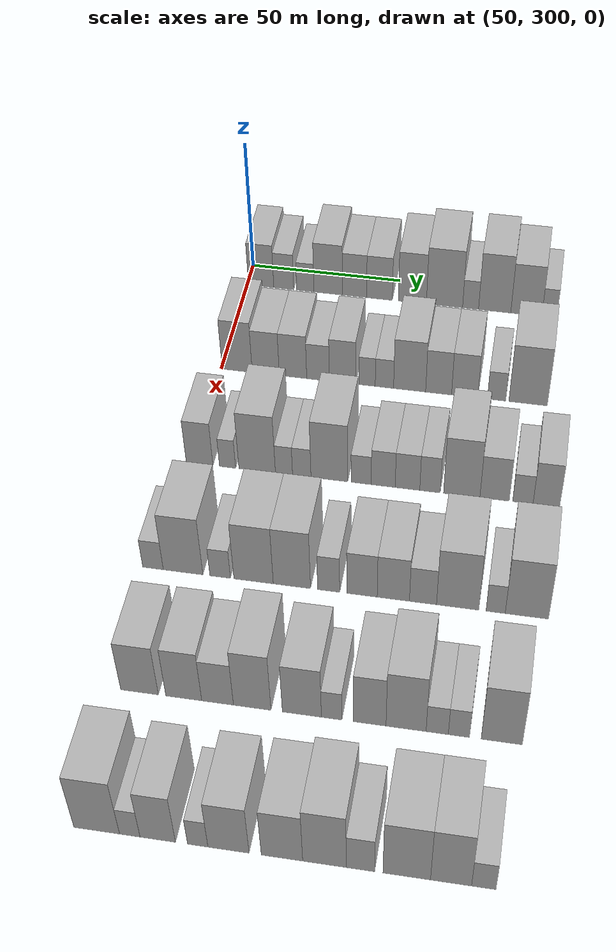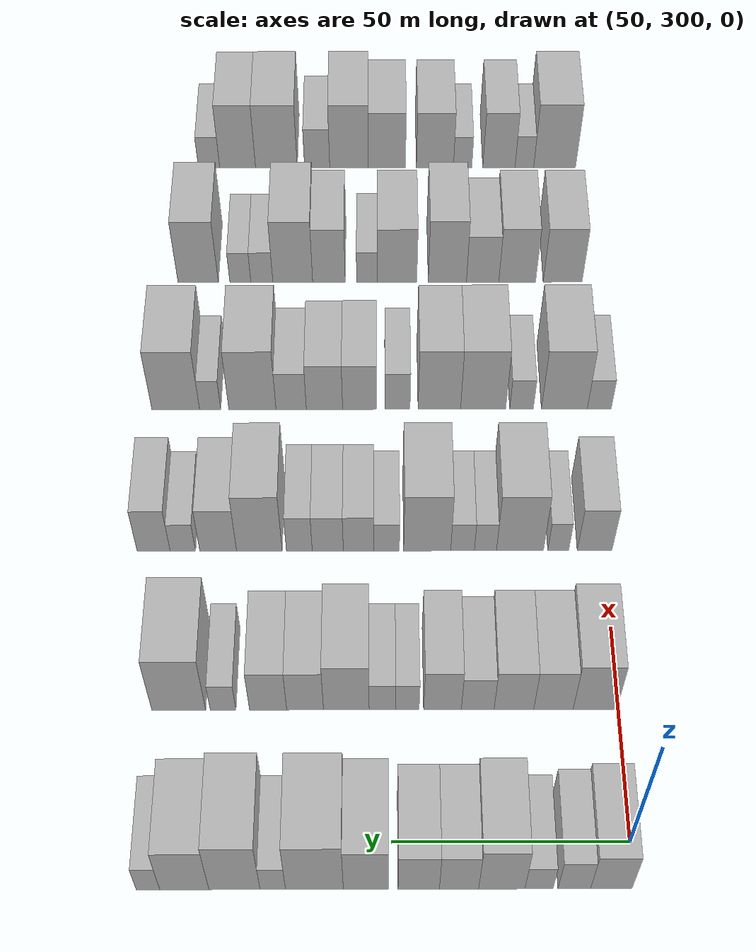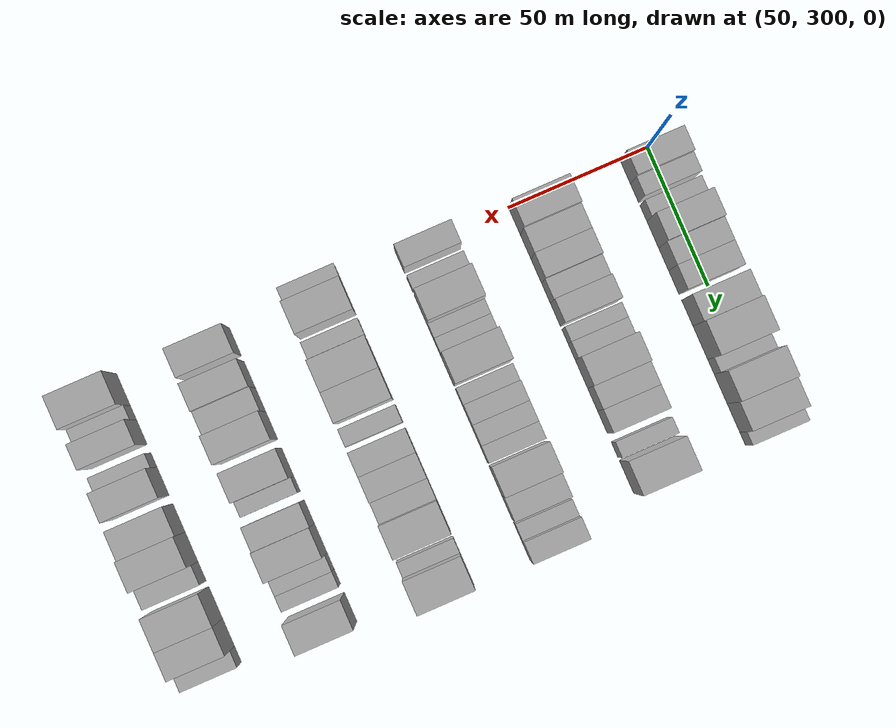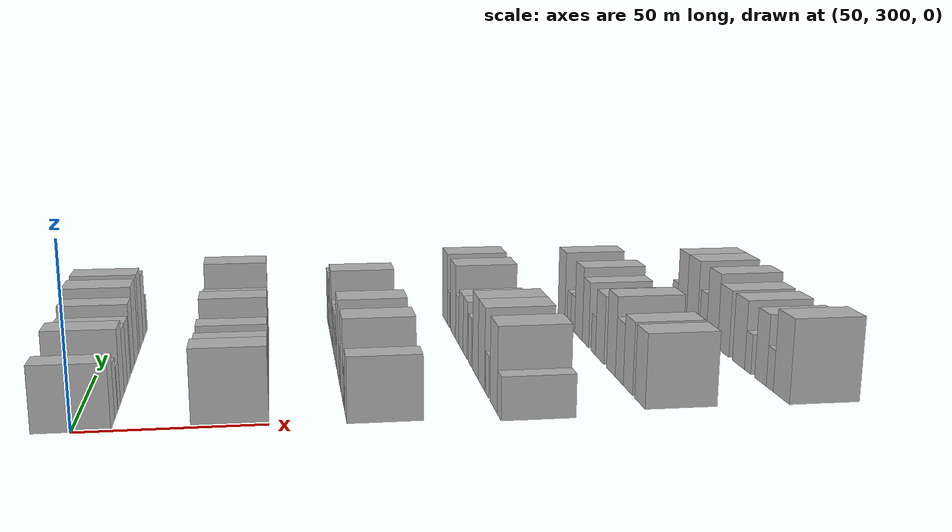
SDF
<sdf version="1.6">
 <world name="default">
  <model name="building_106">
   <static>1</static>
   <pose>50.0000 304.7006 0 0.000000 0.000000 0.000000</pose>
   <link name="link">
    <pose>0 0 9.00 0 0 0</pose>
    <collision name="collision"><geometry><box><size>20.0000 8.5782 18.0000</size></box></geometry></collision>
    <visual name="visual">
     <cast_shadows>0</cast_shadows>
     <geometry><box><size>20.0000 8.5782 18.0000</size></box></geometry>
     <material>
      <script>
       <uri>model://HANNAS_wall/materials/scripts</uri>
       <uri>model://HANNAS_wall/materials/textures</uri>
       <name>vrc/HANNAS_wall</name>
      </script>
     </material>
    </visual>
   </link>
  </model>
  <model name="building_107">
   <static>1</static>
   <pose>50.0000 312.3532 0 0.000000 0.000000 0.000000</pose>
   <link name="link">
    <pose>0 0 7.50 0 0 0</pose>
    <collision name="collision"><geometry><box><size>20.0000 6.7271 15.0000</size></box></geometry></collision>
    <visual name="visual">
     <cast_shadows>0</cast_shadows>
     <geometry><box><size>20.0000 6.7271 15.0000</size></box></geometry>
     <material>
      <script>
       <uri>model://HANNAS_wall/materials/scripts</uri>
       <uri>model://HANNAS_wall/materials/textures</uri>
       <name>vrc/HANNAS_wall</name>
      </script>
     </material>
    </visual>
   </link>
  </model>
  <model name="building_108">
   <static>1</static>
   <pose>50.0000 319.6261 0 0.000000 0.000000 0.000000</pose>
   <link name="link">
    <pose>0 0 6.00 0 0 0</pose>
    <collision name="collision"><geometry><box><size>20.0000 5.8185 12.0000</size></box></geometry></collision>
    <visual name="visual">
     <cast_shadows>0</cast_shadows>
     <geometry><box><size>20.0000 5.8185 12.0000</size></box></geometry>
     <material>
      <script>
       <uri>model://HANNAS_wall/materials/scripts</uri>
       <uri>model://HANNAS_wall/materials/textures</uri>
       <name>vrc/HANNAS_wall</name>
      </script>
     </material>
    </visual>
   </link>
  </model>
  <model name="building_109">
   <static>1</static>
   <pose>50.0000 327.3268 0 0.000000 0.000000 0.000000</pose>
   <link name="link">
    <pose>0 0 10.50 0 0 0</pose>
    <collision name="collision"><geometry><box><size>20.0000 9.5830 21.0000</size></box></geometry></collision>
    <visual name="visual">
     <cast_shadows>0</cast_shadows>
     <geometry><box><size>20.0000 9.5830 21.0000</size></box></geometry>
     <material>
      <script>
       <uri>model://HANNAS_wall/materials/scripts</uri>
       <uri>model://HANNAS_wall/materials/textures</uri>
       <name>vrc/HANNAS_wall</name>
      </script>
     </material>
    </visual>
   </link>
  </model>
  <model name="building_110">
   <static>1</static>
   <pose>50.0000 336.1752 0 0.000000 0.000000 0.000000</pose>
   <link name="link">
    <pose>0 0 9.00 0 0 0</pose>
    <collision name="collision"><geometry><box><size>20.0000 8.1138 18.0000</size></box></geometry></collision>
    <visual name="visual">
     <cast_shadows>0</cast_shadows>
     <geometry><box><size>20.0000 8.1138 18.0000</size></box></geometry>
     <material>
      <script>
       <uri>model://HANNAS_wall/materials/scripts</uri>
       <uri>model://HANNAS_wall/materials/textures</uri>
       <name>vrc/HANNAS_wall</name>
      </script>
     </material>
    </visual>
   </link>
  </model>
  <model name="building_111">
   <static>1</static>
   <pose>50.0000 344.4980 0 0.000000 0.000000 0.000000</pose>
   <link name="link">
    <pose>0 0 9.00 0 0 0</pose>
    <collision name="collision"><geometry><box><size>20.0000 8.5318 18.0000</size></box></geometry></collision>
    <visual name="visual">
     <cast_shadows>0</cast_shadows>
     <geometry><box><size>20.0000 8.5318 18.0000</size></box></geometry>
     <material>
      <script>
       <uri>model://HANNAS_wall/materials/scripts</uri>
       <uri>model://HANNAS_wall/materials/textures</uri>
       <name>vrc/HANNAS_wall</name>
      </script>
     </material>
    </visual>
   </link>
  </model>
  <model name="building_112">
   <static>1</static>
   <pose>50.0000 355.4156 0 0.000000 0.000000 0.000000</pose>
   <link name="link">
    <pose>0 0 10.50 0 0 0</pose>
    <collision name="collision"><geometry><box><size>20.0000 9.3034 21.0000</size></box></geometry></collision>
    <visual name="visual">
     <cast_shadows>0</cast_shadows>
     <geometry><box><size>20.0000 9.3034 21.0000</size></box></geometry>
     <material>
      <script>
       <uri>model://HANNAS_wall/materials/scripts</uri>
       <uri>model://HANNAS_wall/materials/textures</uri>
       <name>vrc/HANNAS_wall</name>
      </script>
     </material>
    </visual>
   </link>
  </model>
  <model name="building_113">
   <static>1</static>
   <pose>50.0000 366.0400 0 0.000000 0.000000 0.000000</pose>
   <link name="link">
    <pose>0 0 12.00 0 0 0</pose>
    <collision name="collision"><geometry><box><size>20.0000 11.9453 24.0000</size></box></geometry></collision>
    <visual name="visual">
     <cast_shadows>0</cast_shadows>
     <geometry><box><size>20.0000 11.9453 24.0000</size></box></geometry>
     <material>
      <script>
       <uri>model://HANNAS_wall/materials/scripts</uri>
       <uri>model://HANNAS_wall/materials/textures</uri>
       <name>vrc/HANNAS_wall</name>
      </script>
     </material>
    </visual>
   </link>
  </model>
  <model name="building_114">
   <static>1</static>
   <pose>50.0000 374.6412 0 0.000000 0.000000 0.000000</pose>
   <link name="link">
    <pose>0 0 6.00 0 0 0</pose>
    <collision name="collision"><geometry><box><size>20.0000 5.2570 12.0000</size></box></geometry></collision>
    <visual name="visual">
     <cast_shadows>0</cast_shadows>
     <geometry><box><size>20.0000 5.2570 12.0000</size></box></geometry>
     <material>
      <script>
       <uri>model://HANNAS_wall/materials/scripts</uri>
       <uri>model://HANNAS_wall/materials/textures</uri>
       <name>vrc/HANNAS_wall</name>
      </script>
     </material>
    </visual>
   </link>
  </model>
  <model name="building_115">
   <static>1</static>
   <pose>50.0000 382.5492 0 0.000000 0.000000 0.000000</pose>
   <link name="link">
    <pose>0 0 12.00 0 0 0</pose>
    <collision name="collision"><geometry><box><size>20.0000 10.5591 24.0000</size></box></geometry></collision>
    <visual name="visual">
     <cast_shadows>0</cast_shadows>
     <geometry><box><size>20.0000 10.5591 24.0000</size></box></geometry>
     <material>
      <script>
       <uri>model://HANNAS_wall/materials/scripts</uri>
       <uri>model://HANNAS_wall/materials/textures</uri>
       <name>vrc/HANNAS_wall</name>
      </script>
     </material>
    </visual>
   </link>
  </model>
  <model name="building_116">
   <static>1</static>
   <pose>50.0000 392.9078 0 0.000000 0.000000 0.000000</pose>
   <link name="link">
    <pose>0 0 10.50 0 0 0</pose>
    <collision name="collision"><geometry><box><size>20.0000 10.1581 21.0000</size></box></geometry></collision>
    <visual name="visual">
     <cast_shadows>0</cast_shadows>
     <geometry><box><size>20.0000 10.1581 21.0000</size></box></geometry>
     <material>
      <script>
       <uri>model://HANNAS_wall/materials/scripts</uri>
       <uri>model://HANNAS_wall/materials/textures</uri>
       <name>vrc/HANNAS_wall</name>
      </script>
     </material>
    </visual>
   </link>
  </model>
  <model name="building_117">
   <static>1</static>
   <pose>50.0000 400.4107 0 0.000000 0.000000 0.000000</pose>
   <link name="link">
    <pose>0 0 6.00 0 0 0</pose>
    <collision name="collision"><geometry><box><size>20.0000 4.8476 12.0000</size></box></geometry></collision>
    <visual name="visual">
     <cast_shadows>0</cast_shadows>
     <geometry><box><size>20.0000 4.8476 12.0000</size></box></geometry>
     <material>
      <script>
       <uri>model://HANNAS_wall/materials/scripts</uri>
       <uri>model://HANNAS_wall/materials/textures</uri>
       <name>vrc/HANNAS_wall</name>
      </script>
     </material>
    </visual>
   </link>
  </model>
  <model name="building_242">
   <static>1</static>
   <pose>90.0000 305.0997 0 0.000000 0.000000 0.000000</pose>
   <link name="link">
    <pose>0 0 10.50 0 0 0</pose>
    <collision name="collision"><geometry><box><size>20.0000 9.6216 21.0000</size></box></geometry></collision>
    <visual name="visual">
     <cast_shadows>0</cast_shadows>
     <geometry><box><size>20.0000 9.6216 21.0000</size></box></geometry>
     <material>
      <script>
       <uri>model://HANNAS_wall/materials/scripts</uri>
       <uri>model://HANNAS_wall/materials/textures</uri>
       <name>vrc/HANNAS_wall</name>
      </script>
     </material>
    </visual>
   </link>
  </model>
  <model name="building_243">
   <static>1</static>
   <pose>90.0000 314.2481 0 0.000000 0.000000 0.000000</pose>
   <link name="link">
    <pose>0 0 9.00 0 0 0</pose>
    <collision name="collision"><geometry><box><size>20.0000 8.6752 18.0000</size></box></geometry></collision>
    <visual name="visual">
     <cast_shadows>0</cast_shadows>
     <geometry><box><size>20.0000 8.6752 18.0000</size></box></geometry>
     <material>
      <script>
       <uri>model://HANNAS_wall/materials/scripts</uri>
       <uri>model://HANNAS_wall/materials/textures</uri>
       <name>vrc/HANNAS_wall</name>
      </script>
     </material>
    </visual>
   </link>
  </model>
  <model name="building_244">
   <static>1</static>
   <pose>90.0000 322.9524 0 0.000000 0.000000 0.000000</pose>
   <link name="link">
    <pose>0 0 9.00 0 0 0</pose>
    <collision name="collision"><geometry><box><size>20.0000 8.7335 18.0000</size></box></geometry></collision>
    <visual name="visual">
     <cast_shadows>0</cast_shadows>
     <geometry><box><size>20.0000 8.7335 18.0000</size></box></geometry>
     <material>
      <script>
       <uri>model://HANNAS_wall/materials/scripts</uri>
       <uri>model://HANNAS_wall/materials/textures</uri>
       <name>vrc/HANNAS_wall</name>
      </script>
     </material>
    </visual>
   </link>
  </model>
  <model name="building_245">
   <static>1</static>
   <pose>90.0000 330.9214 0 0.000000 0.000000 0.000000</pose>
   <link name="link">
    <pose>0 0 7.50 0 0 0</pose>
    <collision name="collision"><geometry><box><size>20.0000 7.2046 15.0000</size></box></geometry></collision>
    <visual name="visual">
     <cast_shadows>0</cast_shadows>
     <geometry><box><size>20.0000 7.2046 15.0000</size></box></geometry>
     <material>
      <script>
       <uri>model://HANNAS_wall/materials/scripts</uri>
       <uri>model://HANNAS_wall/materials/textures</uri>
       <name>vrc/HANNAS_wall</name>
      </script>
     </material>
    </visual>
   </link>
  </model>
  <model name="building_246">
   <static>1</static>
   <pose>90.0000 338.6677 0 0.000000 0.000000 0.000000</pose>
   <link name="link">
    <pose>0 0 9.00 0 0 0</pose>
    <collision name="collision"><geometry><box><size>20.0000 8.2879 18.0000</size></box></geometry></collision>
    <visual name="visual">
     <cast_shadows>0</cast_shadows>
     <geometry><box><size>20.0000 8.2879 18.0000</size></box></geometry>
     <material>
      <script>
       <uri>model://HANNAS_wall/materials/scripts</uri>
       <uri>model://HANNAS_wall/materials/textures</uri>
       <name>vrc/HANNAS_wall</name>
      </script>
     </material>
    </visual>
   </link>
  </model>
  <model name="building_247">
   <static>1</static>
   <pose>90.0000 346.4152 0 0.000000 0.000000 0.000000</pose>
   <link name="link">
    <pose>0 0 6.00 0 0 0</pose>
    <collision name="collision"><geometry><box><size>20.0000 5.2072 12.0000</size></box></geometry></collision>
    <visual name="visual">
     <cast_shadows>0</cast_shadows>
     <geometry><box><size>20.0000 5.2072 12.0000</size></box></geometry>
     <material>
      <script>
       <uri>model://HANNAS_wall/materials/scripts</uri>
       <uri>model://HANNAS_wall/materials/textures</uri>
       <name>vrc/HANNAS_wall</name>
      </script>
     </material>
    </visual>
   </link>
  </model>
  <model name="building_248">
   <static>1</static>
   <pose>90.0000 351.9083 0 0.000000 0.000000 0.000000</pose>
   <link name="link">
    <pose>0 0 6.00 0 0 0</pose>
    <collision name="collision"><geometry><box><size>20.0000 5.7789 12.0000</size></box></geometry></collision>
    <visual name="visual">
     <cast_shadows>0</cast_shadows>
     <geometry><box><size>20.0000 5.7789 12.0000</size></box></geometry>
     <material>
      <script>
       <uri>model://HANNAS_wall/materials/scripts</uri>
       <uri>model://HANNAS_wall/materials/textures</uri>
       <name>vrc/HANNAS_wall</name>
      </script>
     </material>
    </visual>
   </link>
  </model>
  <model name="building_249">
   <static>1</static>
   <pose>90.0000 359.8193 0 0.000000 0.000000 0.000000</pose>
   <link name="link">
    <pose>0 0 10.50 0 0 0</pose>
    <collision name="collision"><geometry><box><size>20.0000 10.0432 21.0000</size></box></geometry></collision>
    <visual name="visual">
     <cast_shadows>0</cast_shadows>
     <geometry><box><size>20.0000 10.0432 21.0000</size></box></geometry>
     <material>
      <script>
       <uri>model://HANNAS_wall/materials/scripts</uri>
       <uri>model://HANNAS_wall/materials/textures</uri>
       <name>vrc/HANNAS_wall</name>
      </script>
     </material>
    </visual>
   </link>
  </model>
  <model name="building_250">
   <static>1</static>
   <pose>90.0000 368.8852 0 0.000000 0.000000 0.000000</pose>
   <link name="link">
    <pose>0 0 9.00 0 0 0</pose>
    <collision name="collision"><geometry><box><size>20.0000 8.0887 18.0000</size></box></geometry></collision>
    <visual name="visual">
     <cast_shadows>0</cast_shadows>
     <geometry><box><size>20.0000 8.0887 18.0000</size></box></geometry>
     <material>
      <script>
       <uri>model://HANNAS_wall/materials/scripts</uri>
       <uri>model://HANNAS_wall/materials/textures</uri>
       <name>vrc/HANNAS_wall</name>
      </script>
     </material>
    </visual>
   </link>
  </model>
  <model name="building_251">
   <static>1</static>
   <pose>90.0000 377.0116 0 0.000000 0.000000 0.000000</pose>
   <link name="link">
    <pose>0 0 9.00 0 0 0</pose>
    <collision name="collision"><geometry><box><size>20.0000 8.1642 18.0000</size></box></geometry></collision>
    <visual name="visual">
     <cast_shadows>0</cast_shadows>
     <geometry><box><size>20.0000 8.1642 18.0000</size></box></geometry>
     <material>
      <script>
       <uri>model://HANNAS_wall/materials/scripts</uri>
       <uri>model://HANNAS_wall/materials/textures</uri>
       <name>vrc/HANNAS_wall</name>
      </script>
     </material>
    </visual>
   </link>
  </model>
  <model name="building_252">
   <static>1</static>
   <pose>90.0000 386.9172 0 0.000000 0.000000 0.000000</pose>
   <link name="link">
    <pose>0 0 6.00 0 0 0</pose>
    <collision name="collision"><geometry><box><size>20.0000 5.6470 12.0000</size></box></geometry></collision>
    <visual name="visual">
     <cast_shadows>0</cast_shadows>
     <geometry><box><size>20.0000 5.6470 12.0000</size></box></geometry>
     <material>
      <script>
       <uri>model://HANNAS_wall/materials/scripts</uri>
       <uri>model://HANNAS_wall/materials/textures</uri>
       <name>vrc/HANNAS_wall</name>
      </script>
     </material>
    </visual>
   </link>
  </model>
  <model name="building_253">
   <static>1</static>
   <pose>90.0000 396.6642 0 0.000000 0.000000 0.000000</pose>
   <link name="link">
    <pose>0 0 12.00 0 0 0</pose>
    <collision name="collision"><geometry><box><size>20.0000 11.8470 24.0000</size></box></geometry></collision>
    <visual name="visual">
     <cast_shadows>0</cast_shadows>
     <geometry><box><size>20.0000 11.8470 24.0000</size></box></geometry>
     <material>
      <script>
       <uri>model://HANNAS_wall/materials/scripts</uri>
       <uri>model://HANNAS_wall/materials/textures</uri>
       <name>vrc/HANNAS_wall</name>
      </script>
     </material>
    </visual>
   </link>
  </model>
  <model name="building_369">
   <static>1</static>
   <pose>130.0000 302.2152 0 0.000000 0.000000 0.000000</pose>
   <link name="link">
    <pose>0 0 9.00 0 0 0</pose>
    <collision name="collision"><geometry><box><size>20.0000 8.1075 18.0000</size></box></geometry></collision>
    <visual name="visual">
     <cast_shadows>0</cast_shadows>
     <geometry><box><size>20.0000 8.1075 18.0000</size></box></geometry>
     <material>
      <script>
       <uri>model://HANNAS_wall/materials/scripts</uri>
       <uri>model://HANNAS_wall/materials/textures</uri>
       <name>vrc/HANNAS_wall</name>
      </script>
     </material>
    </visual>
   </link>
  </model>
  <model name="building_370">
   <static>1</static>
   <pose>130.0000 310.7141 0 0.000000 0.000000 0.000000</pose>
   <link name="link">
    <pose>0 0 6.00 0 0 0</pose>
    <collision name="collision"><geometry><box><size>20.0000 4.8903 12.0000</size></box></geometry></collision>
    <visual name="visual">
     <cast_shadows>0</cast_shadows>
     <geometry><box><size>20.0000 4.8903 12.0000</size></box></geometry>
     <material>
      <script>
       <uri>model://HANNAS_wall/materials/scripts</uri>
       <uri>model://HANNAS_wall/materials/textures</uri>
       <name>vrc/HANNAS_wall</name>
      </script>
     </material>
    </visual>
   </link>
  </model>
  <model name="building_371">
   <static>1</static>
   <pose>130.0000 319.6565 0 0.000000 0.000000 0.000000</pose>
   <link name="link">
    <pose>0 0 12.00 0 0 0</pose>
    <collision name="collision"><geometry><box><size>20.0000 10.9944 24.0000</size></box></geometry></collision>
    <visual name="visual">
     <cast_shadows>0</cast_shadows>
     <geometry><box><size>20.0000 10.9944 24.0000</size></box></geometry>
     <material>
      <script>
       <uri>model://HANNAS_wall/materials/scripts</uri>
       <uri>model://HANNAS_wall/materials/textures</uri>
       <name>vrc/HANNAS_wall</name>
      </script>
     </material>
    </visual>
   </link>
  </model>
  <model name="building_372">
   <static>1</static>
   <pose>130.0000 327.7267 0 0.000000 0.000000 0.000000</pose>
   <link name="link">
    <pose>0 0 6.00 0 0 0</pose>
    <collision name="collision"><geometry><box><size>20.0000 5.1460 12.0000</size></box></geometry></collision>
    <visual name="visual">
     <cast_shadows>0</cast_shadows>
     <geometry><box><size>20.0000 5.1460 12.0000</size></box></geometry>
     <material>
      <script>
       <uri>model://HANNAS_wall/materials/scripts</uri>
       <uri>model://HANNAS_wall/materials/textures</uri>
       <name>vrc/HANNAS_wall</name>
      </script>
     </material>
    </visual>
   </link>
  </model>
  <model name="building_373">
   <static>1</static>
   <pose>130.0000 333.0672 0 0.000000 0.000000 0.000000</pose>
   <link name="link">
    <pose>0 0 6.00 0 0 0</pose>
    <collision name="collision"><geometry><box><size>20.0000 5.5350 12.0000</size></box></geometry></collision>
    <visual name="visual">
     <cast_shadows>0</cast_shadows>
     <geometry><box><size>20.0000 5.5350 12.0000</size></box></geometry>
     <material>
      <script>
       <uri>model://HANNAS_wall/materials/scripts</uri>
       <uri>model://HANNAS_wall/materials/textures</uri>
       <name>vrc/HANNAS_wall</name>
      </script>
     </material>
    </visual>
   </link>
  </model>
  <model name="building_374">
   <static>1</static>
   <pose>130.0000 341.3220 0 0.000000 0.000000 0.000000</pose>
   <link name="link">
    <pose>0 0 12.00 0 0 0</pose>
    <collision name="collision"><geometry><box><size>20.0000 10.9747 24.0000</size></box></geometry></collision>
    <visual name="visual">
     <cast_shadows>0</cast_shadows>
     <geometry><box><size>20.0000 10.9747 24.0000</size></box></geometry>
     <material>
      <script>
       <uri>model://HANNAS_wall/materials/scripts</uri>
       <uri>model://HANNAS_wall/materials/textures</uri>
       <name>vrc/HANNAS_wall</name>
      </script>
     </material>
    </visual>
   </link>
  </model>
  <model name="building_375">
   <static>1</static>
   <pose>130.0000 350.7882 0 0.000000 0.000000 0.000000</pose>
   <link name="link">
    <pose>0 0 6.00 0 0 0</pose>
    <collision name="collision"><geometry><box><size>20.0000 5.9577 12.0000</size></box></geometry></collision>
    <visual name="visual">
     <cast_shadows>0</cast_shadows>
     <geometry><box><size>20.0000 5.9577 12.0000</size></box></geometry>
     <material>
      <script>
       <uri>model://HANNAS_wall/materials/scripts</uri>
       <uri>model://HANNAS_wall/materials/textures</uri>
       <name>vrc/HANNAS_wall</name>
      </script>
     </material>
    </visual>
   </link>
  </model>
  <model name="building_376">
   <static>1</static>
   <pose>130.0000 357.3250 0 0.000000 0.000000 0.000000</pose>
   <link name="link">
    <pose>0 0 7.50 0 0 0</pose>
    <collision name="collision"><geometry><box><size>20.0000 7.1159 15.0000</size></box></geometry></collision>
    <visual name="visual">
     <cast_shadows>0</cast_shadows>
     <geometry><box><size>20.0000 7.1159 15.0000</size></box></geometry>
     <material>
      <script>
       <uri>model://HANNAS_wall/materials/scripts</uri>
       <uri>model://HANNAS_wall/materials/textures</uri>
       <name>vrc/HANNAS_wall</name>
      </script>
     </material>
    </visual>
   </link>
  </model>
  <model name="building_377">
   <static>1</static>
   <pose>130.0000 364.5134 0 0.000000 0.000000 0.000000</pose>
   <link name="link">
    <pose>0 0 7.50 0 0 0</pose>
    <collision name="collision"><geometry><box><size>20.0000 7.2608 15.0000</size></box></geometry></collision>
    <visual name="visual">
     <cast_shadows>0</cast_shadows>
     <geometry><box><size>20.0000 7.2608 15.0000</size></box></geometry>
     <material>
      <script>
       <uri>model://HANNAS_wall/materials/scripts</uri>
       <uri>model://HANNAS_wall/materials/textures</uri>
       <name>vrc/HANNAS_wall</name>
      </script>
     </material>
    </visual>
   </link>
  </model>
  <model name="building_378">
   <static>1</static>
   <pose>130.0000 371.1485 0 0.000000 0.000000 0.000000</pose>
   <link name="link">
    <pose>0 0 7.50 0 0 0</pose>
    <collision name="collision"><geometry><box><size>20.0000 6.0093 15.0000</size></box></geometry></collision>
    <visual name="visual">
     <cast_shadows>0</cast_shadows>
     <geometry><box><size>20.0000 6.0093 15.0000</size></box></geometry>
     <material>
      <script>
       <uri>model://HANNAS_wall/materials/scripts</uri>
       <uri>model://HANNAS_wall/materials/textures</uri>
       <name>vrc/HANNAS_wall</name>
      </script>
     </material>
    </visual>
   </link>
  </model>
  <model name="building_379">
   <static>1</static>
   <pose>130.0000 380.4734 0 0.000000 0.000000 0.000000</pose>
   <link name="link">
    <pose>0 0 12.00 0 0 0</pose>
    <collision name="collision"><geometry><box><size>20.0000 10.6406 24.0000</size></box></geometry></collision>
    <visual name="visual">
     <cast_shadows>0</cast_shadows>
     <geometry><box><size>20.0000 10.6406 24.0000</size></box></geometry>
     <material>
      <script>
       <uri>model://HANNAS_wall/materials/scripts</uri>
       <uri>model://HANNAS_wall/materials/textures</uri>
       <name>vrc/HANNAS_wall</name>
      </script>
     </material>
    </visual>
   </link>
  </model>
  <model name="building_380">
   <static>1</static>
   <pose>130.0000 390.0795 0 0.000000 0.000000 0.000000</pose>
   <link name="link">
    <pose>0 0 9.00 0 0 0</pose>
    <collision name="collision"><geometry><box><size>20.0000 8.5715 18.0000</size></box></geometry></collision>
    <visual name="visual">
     <cast_shadows>0</cast_shadows>
     <geometry><box><size>20.0000 8.5715 18.0000</size></box></geometry>
     <material>
      <script>
       <uri>model://HANNAS_wall/materials/scripts</uri>
       <uri>model://HANNAS_wall/materials/textures</uri>
       <name>vrc/HANNAS_wall</name>
      </script>
     </material>
    </visual>
   </link>
  </model>
  <model name="building_381">
   <static>1</static>
   <pose>130.0000 398.3173 0 0.000000 0.000000 0.000000</pose>
   <link name="link">
    <pose>0 0 6.00 0 0 0</pose>
    <collision name="collision"><geometry><box><size>20.0000 5.9042 12.0000</size></box></geometry></collision>
    <visual name="visual">
     <cast_shadows>0</cast_shadows>
     <geometry><box><size>20.0000 5.9042 12.0000</size></box></geometry>
     <material>
      <script>
       <uri>model://HANNAS_wall/materials/scripts</uri>
       <uri>model://HANNAS_wall/materials/textures</uri>
       <name>vrc/HANNAS_wall</name>
      </script>
     </material>
    </visual>
   </link>
  </model>
  <model name="building_382">
   <static>1</static>
   <pose>130.0000 405.1188 0 0.000000 0.000000 0.000000</pose>
   <link name="link">
    <pose>0 0 9.00 0 0 0</pose>
    <collision name="collision"><geometry><box><size>20.0000 7.6987 18.0000</size></box></geometry></collision>
    <visual name="visual">
     <cast_shadows>0</cast_shadows>
     <geometry><box><size>20.0000 7.6987 18.0000</size></box></geometry>
     <material>
      <script>
       <uri>model://HANNAS_wall/materials/scripts</uri>
       <uri>model://HANNAS_wall/materials/textures</uri>
       <name>vrc/HANNAS_wall</name>
      </script>
     </material>
    </visual>
   </link>
  </model>
  <model name="building_494">
   <static>1</static>
   <pose>170.0000 298.1149 0 0.000000 0.000000 0.000000</pose>
   <link name="link">
    <pose>0 0 6.00 0 0 0</pose>
    <collision name="collision"><geometry><box><size>20.0000 5.8905 12.0000</size></box></geometry></collision>
    <visual name="visual">
     <cast_shadows>0</cast_shadows>
     <geometry><box><size>20.0000 5.8905 12.0000</size></box></geometry>
     <material>
      <script>
       <uri>model://HANNAS_wall/materials/scripts</uri>
       <uri>model://HANNAS_wall/materials/textures</uri>
       <name>vrc/HANNAS_wall</name>
      </script>
     </material>
    </visual>
   </link>
  </model>
  <model name="building_495">
   <static>1</static>
   <pose>170.0000 306.7278 0 0.000000 0.000000 0.000000</pose>
   <link name="link">
    <pose>0 0 12.00 0 0 0</pose>
    <collision name="collision"><geometry><box><size>20.0000 11.3353 24.0000</size></box></geometry></collision>
    <visual name="visual">
     <cast_shadows>0</cast_shadows>
     <geometry><box><size>20.0000 11.3353 24.0000</size></box></geometry>
     <material>
      <script>
       <uri>model://HANNAS_wall/materials/scripts</uri>
       <uri>model://HANNAS_wall/materials/textures</uri>
       <name>vrc/HANNAS_wall</name>
      </script>
     </material>
    </visual>
   </link>
  </model>
  <model name="building_496">
   <static>1</static>
   <pose>170.0000 317.3121 0 0.000000 0.000000 0.000000</pose>
   <link name="link">
    <pose>0 0 6.00 0 0 0</pose>
    <collision name="collision"><geometry><box><size>20.0000 5.8332 12.0000</size></box></geometry></collision>
    <visual name="visual">
     <cast_shadows>0</cast_shadows>
     <geometry><box><size>20.0000 5.8332 12.0000</size></box></geometry>
     <material>
      <script>
       <uri>model://HANNAS_wall/materials/scripts</uri>
       <uri>model://HANNAS_wall/materials/textures</uri>
       <name>vrc/HANNAS_wall</name>
      </script>
     </material>
    </visual>
   </link>
  </model>
  <model name="building_497">
   <static>1</static>
   <pose>170.0000 326.7938 0 0.000000 0.000000 0.000000</pose>
   <link name="link">
    <pose>0 0 12.00 0 0 0</pose>
    <collision name="collision"><geometry><box><size>20.0000 11.1301 24.0000</size></box></geometry></collision>
    <visual name="visual">
     <cast_shadows>0</cast_shadows>
     <geometry><box><size>20.0000 11.1301 24.0000</size></box></geometry>
     <material>
      <script>
       <uri>model://HANNAS_wall/materials/scripts</uri>
       <uri>model://HANNAS_wall/materials/textures</uri>
       <name>vrc/HANNAS_wall</name>
      </script>
     </material>
    </visual>
   </link>
  </model>
  <model name="building_498">
   <static>1</static>
   <pose>170.0000 337.6033 0 0.000000 0.000000 0.000000</pose>
   <link name="link">
    <pose>0 0 12.00 0 0 0</pose>
    <collision name="collision"><geometry><box><size>20.0000 10.4890 24.0000</size></box></geometry></collision>
    <visual name="visual">
     <cast_shadows>0</cast_shadows>
     <geometry><box><size>20.0000 10.4890 24.0000</size></box></geometry>
     <material>
      <script>
       <uri>model://HANNAS_wall/materials/scripts</uri>
       <uri>model://HANNAS_wall/materials/textures</uri>
       <name>vrc/HANNAS_wall</name>
      </script>
     </material>
    </visual>
   </link>
  </model>
  <model name="building_499">
   <static>1</static>
   <pose>170.0000 347.9343 0 0.000000 0.000000 0.000000</pose>
   <link name="link">
    <pose>0 0 7.50 0 0 0</pose>
    <collision name="collision"><geometry><box><size>20.0000 6.1728 15.0000</size></box></geometry></collision>
    <visual name="visual">
     <cast_shadows>0</cast_shadows>
     <geometry><box><size>20.0000 6.1728 15.0000</size></box></geometry>
     <material>
      <script>
       <uri>model://HANNAS_wall/materials/scripts</uri>
       <uri>model://HANNAS_wall/materials/textures</uri>
       <name>vrc/HANNAS_wall</name>
      </script>
     </material>
    </visual>
   </link>
  </model>
  <model name="building_500">
   <static>1</static>
   <pose>170.0000 357.2494 0 0.000000 0.000000 0.000000</pose>
   <link name="link">
    <pose>0 0 9.00 0 0 0</pose>
    <collision name="collision"><geometry><box><size>20.0000 8.4573 18.0000</size></box></geometry></collision>
    <visual name="visual">
     <cast_shadows>0</cast_shadows>
     <geometry><box><size>20.0000 8.4573 18.0000</size></box></geometry>
     <material>
      <script>
       <uri>model://HANNAS_wall/materials/scripts</uri>
       <uri>model://HANNAS_wall/materials/textures</uri>
       <name>vrc/HANNAS_wall</name>
      </script>
     </material>
    </visual>
   </link>
  </model>
  <model name="building_501">
   <static>1</static>
   <pose>170.0000 365.9501 0 0.000000 0.000000 0.000000</pose>
   <link name="link">
    <pose>0 0 9.00 0 0 0</pose>
    <collision name="collision"><geometry><box><size>20.0000 8.9441 18.0000</size></box></geometry></collision>
    <visual name="visual">
     <cast_shadows>0</cast_shadows>
     <geometry><box><size>20.0000 8.9441 18.0000</size></box></geometry>
     <material>
      <script>
       <uri>model://HANNAS_wall/materials/scripts</uri>
       <uri>model://HANNAS_wall/materials/textures</uri>
       <name>vrc/HANNAS_wall</name>
      </script>
     </material>
    </visual>
   </link>
  </model>
  <model name="building_502">
   <static>1</static>
   <pose>170.0000 374.1626 0 0.000000 0.000000 0.000000</pose>
   <link name="link">
    <pose>0 0 7.50 0 0 0</pose>
    <collision name="collision"><geometry><box><size>20.0000 7.4810 15.0000</size></box></geometry></collision>
    <visual name="visual">
     <cast_shadows>0</cast_shadows>
     <geometry><box><size>20.0000 7.4810 15.0000</size></box></geometry>
     <material>
      <script>
       <uri>model://HANNAS_wall/materials/scripts</uri>
       <uri>model://HANNAS_wall/materials/textures</uri>
       <name>vrc/HANNAS_wall</name>
      </script>
     </material>
    </visual>
   </link>
  </model>
  <model name="building_503">
   <static>1</static>
   <pose>170.0000 383.7167 0 0.000000 0.000000 0.000000</pose>
   <link name="link">
    <pose>0 0 12.00 0 0 0</pose>
    <collision name="collision"><geometry><box><size>20.0000 11.6272 24.0000</size></box></geometry></collision>
    <visual name="visual">
     <cast_shadows>0</cast_shadows>
     <geometry><box><size>20.0000 11.6272 24.0000</size></box></geometry>
     <material>
      <script>
       <uri>model://HANNAS_wall/materials/scripts</uri>
       <uri>model://HANNAS_wall/materials/textures</uri>
       <name>vrc/HANNAS_wall</name>
      </script>
     </material>
    </visual>
   </link>
  </model>
  <model name="building_504">
   <static>1</static>
   <pose>170.0000 394.1425 0 0.000000 0.000000 0.000000</pose>
   <link name="link">
    <pose>0 0 6.00 0 0 0</pose>
    <collision name="collision"><geometry><box><size>20.0000 5.2244 12.0000</size></box></geometry></collision>
    <visual name="visual">
     <cast_shadows>0</cast_shadows>
     <geometry><box><size>20.0000 5.2244 12.0000</size></box></geometry>
     <material>
      <script>
       <uri>model://HANNAS_wall/materials/scripts</uri>
       <uri>model://HANNAS_wall/materials/textures</uri>
       <name>vrc/HANNAS_wall</name>
      </script>
     </material>
    </visual>
   </link>
  </model>
  <model name="building_505">
   <static>1</static>
   <pose>170.0000 402.6429 0 0.000000 0.000000 0.000000</pose>
   <link name="link">
    <pose>0 0 12.00 0 0 0</pose>
    <collision name="collision"><geometry><box><size>20.0000 11.7764 24.0000</size></box></geometry></collision>
    <visual name="visual">
     <cast_shadows>0</cast_shadows>
     <geometry><box><size>20.0000 11.7764 24.0000</size></box></geometry>
     <material>
      <script>
       <uri>model://HANNAS_wall/materials/scripts</uri>
       <uri>model://HANNAS_wall/materials/textures</uri>
       <name>vrc/HANNAS_wall</name>
      </script>
     </material>
    </visual>
   </link>
  </model>
  <model name="building_621">
   <static>1</static>
   <pose>210.0000 304.6208 0 0.000000 0.000000 0.000000</pose>
   <link name="link">
    <pose>0 0 10.50 0 0 0</pose>
    <collision name="collision"><geometry><box><size>20.0000 10.1061 21.0000</size></box></geometry></collision>
    <visual name="visual">
     <cast_shadows>0</cast_shadows>
     <geometry><box><size>20.0000 10.1061 21.0000</size></box></geometry>
     <material>
      <script>
       <uri>model://HANNAS_wall/materials/scripts</uri>
       <uri>model://HANNAS_wall/materials/textures</uri>
       <name>vrc/HANNAS_wall</name>
      </script>
     </material>
    </visual>
   </link>
  </model>
  <model name="building_622">
   <static>1</static>
   <pose>210.0000 316.4593 0 0.000000 0.000000 0.000000</pose>
   <link name="link">
    <pose>0 0 10.50 0 0 0</pose>
    <collision name="collision"><geometry><box><size>20.0000 9.5708 21.0000</size></box></geometry></collision>
    <visual name="visual">
     <cast_shadows>0</cast_shadows>
     <geometry><box><size>20.0000 9.5708 21.0000</size></box></geometry>
     <material>
      <script>
       <uri>model://HANNAS_wall/materials/scripts</uri>
       <uri>model://HANNAS_wall/materials/textures</uri>
       <name>vrc/HANNAS_wall</name>
      </script>
     </material>
    </visual>
   </link>
  </model>
  <model name="building_623">
   <static>1</static>
   <pose>210.0000 325.4656 0 0.000000 0.000000 0.000000</pose>
   <link name="link">
    <pose>0 0 9.00 0 0 0</pose>
    <collision name="collision"><geometry><box><size>20.0000 8.4419 18.0000</size></box></geometry></collision>
    <visual name="visual">
     <cast_shadows>0</cast_shadows>
     <geometry><box><size>20.0000 8.4419 18.0000</size></box></geometry>
     <material>
      <script>
       <uri>model://HANNAS_wall/materials/scripts</uri>
       <uri>model://HANNAS_wall/materials/textures</uri>
       <name>vrc/HANNAS_wall</name>
      </script>
     </material>
    </visual>
   </link>
  </model>
  <model name="building_624">
   <static>1</static>
   <pose>210.0000 334.6456 0 0.000000 0.000000 0.000000</pose>
   <link name="link">
    <pose>0 0 12.00 0 0 0</pose>
    <collision name="collision"><geometry><box><size>20.0000 9.9182 24.0000</size></box></geometry></collision>
    <visual name="visual">
     <cast_shadows>0</cast_shadows>
     <geometry><box><size>20.0000 9.9182 24.0000</size></box></geometry>
     <material>
      <script>
       <uri>model://HANNAS_wall/materials/scripts</uri>
       <uri>model://HANNAS_wall/materials/textures</uri>
       <name>vrc/HANNAS_wall</name>
      </script>
     </material>
    </visual>
   </link>
  </model>
  <model name="building_625">
   <static>1</static>
   <pose>210.0000 347.7260 0 0.000000 0.000000 0.000000</pose>
   <link name="link">
    <pose>0 0 10.50 0 0 0</pose>
    <collision name="collision"><geometry><box><size>20.0000 10.2426 21.0000</size></box></geometry></collision>
    <visual name="visual">
     <cast_shadows>0</cast_shadows>
     <geometry><box><size>20.0000 10.2426 21.0000</size></box></geometry>
     <material>
      <script>
       <uri>model://HANNAS_wall/materials/scripts</uri>
       <uri>model://HANNAS_wall/materials/textures</uri>
       <name>vrc/HANNAS_wall</name>
      </script>
     </material>
    </visual>
   </link>
  </model>
  <model name="building_626">
   <static>1</static>
   <pose>210.0000 355.5270 0 0.000000 0.000000 0.000000</pose>
   <link name="link">
    <pose>0 0 6.00 0 0 0</pose>
    <collision name="collision"><geometry><box><size>20.0000 5.3593 12.0000</size></box></geometry></collision>
    <visual name="visual">
     <cast_shadows>0</cast_shadows>
     <geometry><box><size>20.0000 5.3593 12.0000</size></box></geometry>
     <material>
      <script>
       <uri>model://HANNAS_wall/materials/scripts</uri>
       <uri>model://HANNAS_wall/materials/textures</uri>
       <name>vrc/HANNAS_wall</name>
      </script>
     </material>
    </visual>
   </link>
  </model>
  <model name="building_627">
   <static>1</static>
   <pose>210.0000 365.4455 0 0.000000 0.000000 0.000000</pose>
   <link name="link">
    <pose>0 0 10.50 0 0 0</pose>
    <collision name="collision"><geometry><box><size>20.0000 8.4778 21.0000</size></box></geometry></collision>
    <visual name="visual">
     <cast_shadows>0</cast_shadows>
     <geometry><box><size>20.0000 8.4778 21.0000</size></box></geometry>
     <material>
      <script>
       <uri>model://HANNAS_wall/materials/scripts</uri>
       <uri>model://HANNAS_wall/materials/textures</uri>
       <name>vrc/HANNAS_wall</name>
      </script>
     </material>
    </visual>
   </link>
  </model>
  <model name="building_628">
   <static>1</static>
   <pose>210.0000 374.8652 0 0.000000 0.000000 0.000000</pose>
   <link name="link">
    <pose>0 0 12.00 0 0 0</pose>
    <collision name="collision"><geometry><box><size>20.0000 10.3617 24.0000</size></box></geometry></collision>
    <visual name="visual">
     <cast_shadows>0</cast_shadows>
     <geometry><box><size>20.0000 10.3617 24.0000</size></box></geometry>
     <material>
      <script>
       <uri>model://HANNAS_wall/materials/scripts</uri>
       <uri>model://HANNAS_wall/materials/textures</uri>
       <name>vrc/HANNAS_wall</name>
      </script>
     </material>
    </visual>
   </link>
  </model>
  <model name="building_629">
   <static>1</static>
   <pose>210.0000 382.9049 0 0.000000 0.000000 0.000000</pose>
   <link name="link">
    <pose>0 0 6.00 0 0 0</pose>
    <collision name="collision"><geometry><box><size>20.0000 5.7178 12.0000</size></box></geometry></collision>
    <visual name="visual">
     <cast_shadows>0</cast_shadows>
     <geometry><box><size>20.0000 5.7178 12.0000</size></box></geometry>
     <material>
      <script>
       <uri>model://HANNAS_wall/materials/scripts</uri>
       <uri>model://HANNAS_wall/materials/textures</uri>
       <name>vrc/HANNAS_wall</name>
      </script>
     </material>
    </visual>
   </link>
  </model>
  <model name="building_630">
   <static>1</static>
   <pose>210.0000 388.4871 0 0.000000 0.000000 0.000000</pose>
   <link name="link">
    <pose>0 0 6.00 0 0 0</pose>
    <collision name="collision"><geometry><box><size>20.0000 5.4466 12.0000</size></box></geometry></collision>
    <visual name="visual">
     <cast_shadows>0</cast_shadows>
     <geometry><box><size>20.0000 5.4466 12.0000</size></box></geometry>
     <material>
      <script>
       <uri>model://HANNAS_wall/materials/scripts</uri>
       <uri>model://HANNAS_wall/materials/textures</uri>
       <name>vrc/HANNAS_wall</name>
      </script>
     </material>
    </visual>
   </link>
  </model>
  <model name="building_631">
   <static>1</static>
   <pose>210.0000 399.4490 0 0.000000 0.000000 0.000000</pose>
   <link name="link">
    <pose>0 0 12.00 0 0 0</pose>
    <collision name="collision"><geometry><box><size>20.0000 10.4771 24.0000</size></box></geometry></collision>
    <visual name="visual">
     <cast_shadows>0</cast_shadows>
     <geometry><box><size>20.0000 10.4771 24.0000</size></box></geometry>
     <material>
      <script>
       <uri>model://HANNAS_wall/materials/scripts</uri>
       <uri>model://HANNAS_wall/materials/textures</uri>
       <name>vrc/HANNAS_wall</name>
      </script>
     </material>
    </visual>
   </link>
  </model>
  <model name="building_755">
   <static>1</static>
   <pose>250.0000 304.2839 0 0.000000 0.000000 0.000000</pose>
   <link name="link">
    <pose>0 0 12.00 0 0 0</pose>
    <collision name="collision"><geometry><box><size>20.0000 11.4627 24.0000</size></box></geometry></collision>
    <visual name="visual">
     <cast_shadows>0</cast_shadows>
     <geometry><box><size>20.0000 11.4627 24.0000</size></box></geometry>
     <material>
      <script>
       <uri>model://HANNAS_wall/materials/scripts</uri>
       <uri>model://HANNAS_wall/materials/textures</uri>
       <name>vrc/HANNAS_wall</name>
      </script>
     </material>
    </visual>
   </link>
  </model>
  <model name="building_756">
   <static>1</static>
   <pose>250.0000 312.5710 0 0.000000 0.000000 0.000000</pose>
   <link name="link">
    <pose>0 0 6.00 0 0 0</pose>
    <collision name="collision"><geometry><box><size>20.0000 5.1115 12.0000</size></box></geometry></collision>
    <visual name="visual">
     <cast_shadows>0</cast_shadows>
     <geometry><box><size>20.0000 5.1115 12.0000</size></box></geometry>
     <material>
      <script>
       <uri>model://HANNAS_wall/materials/scripts</uri>
       <uri>model://HANNAS_wall/materials/textures</uri>
       <name>vrc/HANNAS_wall</name>
      </script>
     </material>
    </visual>
   </link>
  </model>
  <model name="building_757">
   <static>1</static>
   <pose>250.0000 319.5385 0 0.000000 0.000000 0.000000</pose>
   <link name="link">
    <pose>0 0 10.50 0 0 0</pose>
    <collision name="collision"><geometry><box><size>20.0000 8.8236 21.0000</size></box></geometry></collision>
    <visual name="visual">
     <cast_shadows>0</cast_shadows>
     <geometry><box><size>20.0000 8.8236 21.0000</size></box></geometry>
     <material>
      <script>
       <uri>model://HANNAS_wall/materials/scripts</uri>
       <uri>model://HANNAS_wall/materials/textures</uri>
       <name>vrc/HANNAS_wall</name>
      </script>
     </material>
    </visual>
   </link>
  </model>
  <model name="building_758">
   <static>1</static>
   <pose>250.0000 329.4689 0 0.000000 0.000000 0.000000</pose>
   <link name="link">
    <pose>0 0 6.00 0 0 0</pose>
    <collision name="collision"><geometry><box><size>20.0000 5.0371 12.0000</size></box></geometry></collision>
    <visual name="visual">
     <cast_shadows>0</cast_shadows>
     <geometry><box><size>20.0000 5.0371 12.0000</size></box></geometry>
     <material>
      <script>
       <uri>model://HANNAS_wall/materials/scripts</uri>
       <uri>model://HANNAS_wall/materials/textures</uri>
       <name>vrc/HANNAS_wall</name>
      </script>
     </material>
    </visual>
   </link>
  </model>
  <model name="building_759">
   <static>1</static>
   <pose>250.0000 337.0559 0 0.000000 0.000000 0.000000</pose>
   <link name="link">
    <pose>0 0 10.50 0 0 0</pose>
    <collision name="collision"><geometry><box><size>20.0000 10.1367 21.0000</size></box></geometry></collision>
    <visual name="visual">
     <cast_shadows>0</cast_shadows>
     <geometry><box><size>20.0000 10.1367 21.0000</size></box></geometry>
     <material>
      <script>
       <uri>model://HANNAS_wall/materials/scripts</uri>
       <uri>model://HANNAS_wall/materials/textures</uri>
       <name>vrc/HANNAS_wall</name>
      </script>
     </material>
    </visual>
   </link>
  </model>
  <model name="building_760">
   <static>1</static>
   <pose>250.0000 350.1877 0 0.000000 0.000000 0.000000</pose>
   <link name="link">
    <pose>0 0 10.50 0 0 0</pose>
    <collision name="collision"><geometry><box><size>20.0000 10.1270 21.0000</size></box></geometry></collision>
    <visual name="visual">
     <cast_shadows>0</cast_shadows>
     <geometry><box><size>20.0000 10.1270 21.0000</size></box></geometry>
     <material>
      <script>
       <uri>model://HANNAS_wall/materials/scripts</uri>
       <uri>model://HANNAS_wall/materials/textures</uri>
       <name>vrc/HANNAS_wall</name>
      </script>
     </material>
    </visual>
   </link>
  </model>
  <model name="building_761">
   <static>1</static>
   <pose>250.0000 360.5413 0 0.000000 0.000000 0.000000</pose>
   <link name="link">
    <pose>0 0 12.00 0 0 0</pose>
    <collision name="collision"><geometry><box><size>20.0000 10.5801 24.0000</size></box></geometry></collision>
    <visual name="visual">
     <cast_shadows>0</cast_shadows>
     <geometry><box><size>20.0000 10.5801 24.0000</size></box></geometry>
     <material>
      <script>
       <uri>model://HANNAS_wall/materials/scripts</uri>
       <uri>model://HANNAS_wall/materials/textures</uri>
       <name>vrc/HANNAS_wall</name>
      </script>
     </material>
    </visual>
   </link>
  </model>
  <model name="building_762">
   <static>1</static>
   <pose>250.0000 369.2680 0 0.000000 0.000000 0.000000</pose>
   <link name="link">
    <pose>0 0 7.50 0 0 0</pose>
    <collision name="collision"><geometry><box><size>20.0000 6.8734 15.0000</size></box></geometry></collision>
    <visual name="visual">
     <cast_shadows>0</cast_shadows>
     <geometry><box><size>20.0000 6.8734 15.0000</size></box></geometry>
     <material>
      <script>
       <uri>model://HANNAS_wall/materials/scripts</uri>
       <uri>model://HANNAS_wall/materials/textures</uri>
       <name>vrc/HANNAS_wall</name>
      </script>
     </material>
    </visual>
   </link>
  </model>
  <model name="building_763">
   <static>1</static>
   <pose>250.0000 380.4155 0 0.000000 0.000000 0.000000</pose>
   <link name="link">
    <pose>0 0 12.00 0 0 0</pose>
    <collision name="collision"><geometry><box><size>20.0000 11.4216 24.0000</size></box></geometry></collision>
    <visual name="visual">
     <cast_shadows>0</cast_shadows>
     <geometry><box><size>20.0000 11.4216 24.0000</size></box></geometry>
     <material>
      <script>
       <uri>model://HANNAS_wall/materials/scripts</uri>
       <uri>model://HANNAS_wall/materials/textures</uri>
       <name>vrc/HANNAS_wall</name>
      </script>
     </material>
    </visual>
   </link>
  </model>
  <model name="building_764">
   <static>1</static>
   <pose>250.0000 391.0268 0 0.000000 0.000000 0.000000</pose>
   <link name="link">
    <pose>0 0 12.00 0 0 0</pose>
    <collision name="collision"><geometry><box><size>20.0000 9.8011 24.0000</size></box></geometry></collision>
    <visual name="visual">
     <cast_shadows>0</cast_shadows>
     <geometry><box><size>20.0000 9.8011 24.0000</size></box></geometry>
     <material>
      <script>
       <uri>model://HANNAS_wall/materials/scripts</uri>
       <uri>model://HANNAS_wall/materials/textures</uri>
       <name>vrc/HANNAS_wall</name>
      </script>
     </material>
    </visual>
   </link>
  </model>
  <model name="building_765">
   <static>1</static>
   <pose>250.0000 398.8291 0 0.000000 0.000000 0.000000</pose>
   <link name="link">
    <pose>0 0 6.00 0 0 0</pose>
    <collision name="collision"><geometry><box><size>20.0000 5.8034 12.0000</size></box></geometry></collision>
    <visual name="visual">
     <cast_shadows>0</cast_shadows>
     <geometry><box><size>20.0000 5.8034 12.0000</size></box></geometry>
     <material>
      <script>
       <uri>model://HANNAS_wall/materials/scripts</uri>
       <uri>model://HANNAS_wall/materials/textures</uri>
       <name>vrc/HANNAS_wall</name>
      </script>
     </material>
    </visual>
   </link>
  </model>
 </world>
</sdf>
